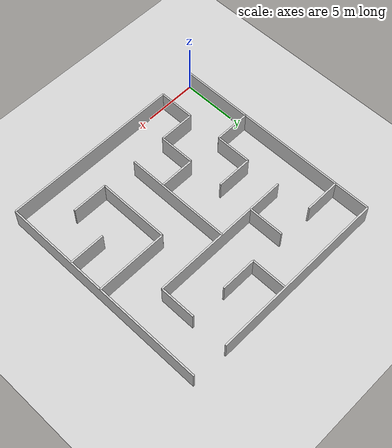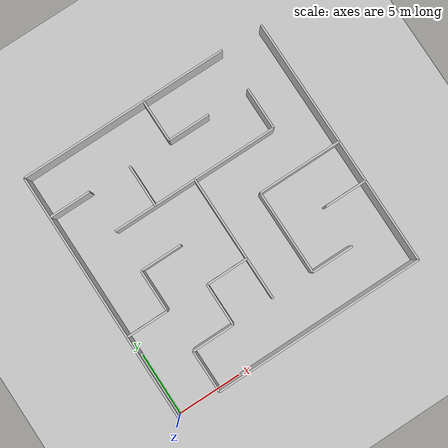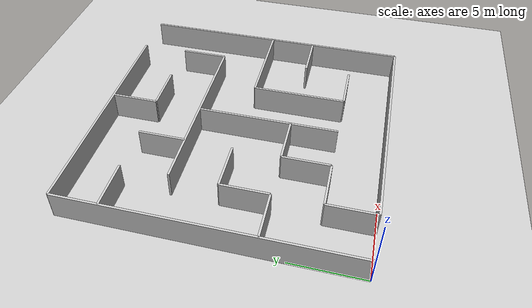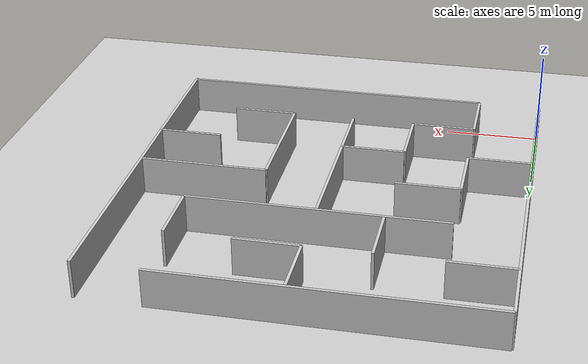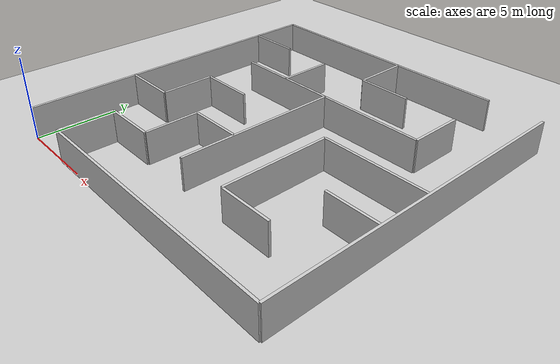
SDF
<?xml version="1.0" ?>
<sdf version="1.6">
  <world name="maze_maze_505">

    <include>
      <uri>model://sun</uri>
    </include>

    <include>
      <uri>model://ground_plane</uri>
    </include>

    <!-- Maze: 6x6 grid, 20m x 20m -->
    <!-- Cell size: 3.3m, passage width: 3.18m -->
    <!-- Entrance: south wall near x=1.7 (1.5m gap) -->
    <!-- Exit: north wall near x=18.3 (1.5m gap) -->
    <!-- 22 wall segments -->
    <model name="wall_0">
      <static>true</static>
      <pose>11.6667 0.0000 1.00 0 0 0</pose>
      <link name="link">
        <collision name="collision">
          <geometry>
            <box><size>16.6667 0.1500 2.00</size></box>
          </geometry>
        </collision>
        <visual name="visual">
          <geometry>
            <box><size>16.6667 0.1500 2.00</size></box>
          </geometry>
          <material>
            <ambient>0.7 0.7 0.7 1</ambient>
            <diffuse>0.8 0.8 0.8 1</diffuse>
          </material>
        </visual>
      </link>
    </model>
    <model name="wall_1">
      <static>true</static>
      <pose>5.0000 3.3333 1.00 0 0 0</pose>
      <link name="link">
        <collision name="collision">
          <geometry>
            <box><size>3.3333 0.1500 2.00</size></box>
          </geometry>
        </collision>
        <visual name="visual">
          <geometry>
            <box><size>3.3333 0.1500 2.00</size></box>
          </geometry>
          <material>
            <ambient>0.7 0.7 0.7 1</ambient>
            <diffuse>0.8 0.8 0.8 1</diffuse>
          </material>
        </visual>
      </link>
    </model>
    <model name="wall_2">
      <static>true</static>
      <pose>15.0000 3.3333 1.00 0 0 0</pose>
      <link name="link">
        <collision name="collision">
          <geometry>
            <box><size>3.3333 0.1500 2.00</size></box>
          </geometry>
        </collision>
        <visual name="visual">
          <geometry>
            <box><size>3.3333 0.1500 2.00</size></box>
          </geometry>
          <material>
            <ambient>0.7 0.7 0.7 1</ambient>
            <diffuse>0.8 0.8 0.8 1</diffuse>
          </material>
        </visual>
      </link>
    </model>
    <model name="wall_3">
      <static>true</static>
      <pose>1.6667 6.6667 1.00 0 0 0</pose>
      <link name="link">
        <collision name="collision">
          <geometry>
            <box><size>3.3333 0.1500 2.00</size></box>
          </geometry>
        </collision>
        <visual name="visual">
          <geometry>
            <box><size>3.3333 0.1500 2.00</size></box>
          </geometry>
          <material>
            <ambient>0.7 0.7 0.7 1</ambient>
            <diffuse>0.8 0.8 0.8 1</diffuse>
          </material>
        </visual>
      </link>
    </model>
    <model name="wall_4">
      <static>true</static>
      <pose>8.3333 6.6667 1.00 0 0 0</pose>
      <link name="link">
        <collision name="collision">
          <geometry>
            <box><size>3.3333 0.1500 2.00</size></box>
          </geometry>
        </collision>
        <visual name="visual">
          <geometry>
            <box><size>3.3333 0.1500 2.00</size></box>
          </geometry>
          <material>
            <ambient>0.7 0.7 0.7 1</ambient>
            <diffuse>0.8 0.8 0.8 1</diffuse>
          </material>
        </visual>
      </link>
    </model>
    <model name="wall_5">
      <static>true</static>
      <pose>18.3333 6.6667 1.00 0 0 0</pose>
      <link name="link">
        <collision name="collision">
          <geometry>
            <box><size>3.3333 0.1500 2.00</size></box>
          </geometry>
        </collision>
        <visual name="visual">
          <geometry>
            <box><size>3.3333 0.1500 2.00</size></box>
          </geometry>
          <material>
            <ambient>0.7 0.7 0.7 1</ambient>
            <diffuse>0.8 0.8 0.8 1</diffuse>
          </material>
        </visual>
      </link>
    </model>
    <model name="wall_6">
      <static>true</static>
      <pose>5.0000 10.0000 1.00 0 0 0</pose>
      <link name="link">
        <collision name="collision">
          <geometry>
            <box><size>3.3333 0.1500 2.00</size></box>
          </geometry>
        </collision>
        <visual name="visual">
          <geometry>
            <box><size>3.3333 0.1500 2.00</size></box>
          </geometry>
          <material>
            <ambient>0.7 0.7 0.7 1</ambient>
            <diffuse>0.8 0.8 0.8 1</diffuse>
          </material>
        </visual>
      </link>
    </model>
    <model name="wall_7">
      <static>true</static>
      <pose>16.6667 10.0000 1.00 0 0 0</pose>
      <link name="link">
        <collision name="collision">
          <geometry>
            <box><size>6.6667 0.1500 2.00</size></box>
          </geometry>
        </collision>
        <visual name="visual">
          <geometry>
            <box><size>6.6667 0.1500 2.00</size></box>
          </geometry>
          <material>
            <ambient>0.7 0.7 0.7 1</ambient>
            <diffuse>0.8 0.8 0.8 1</diffuse>
          </material>
        </visual>
      </link>
    </model>
    <model name="wall_8">
      <static>true</static>
      <pose>10.0000 13.3333 1.00 0 0 0</pose>
      <link name="link">
        <collision name="collision">
          <geometry>
            <box><size>13.3333 0.1500 2.00</size></box>
          </geometry>
        </collision>
        <visual name="visual">
          <geometry>
            <box><size>13.3333 0.1500 2.00</size></box>
          </geometry>
          <material>
            <ambient>0.7 0.7 0.7 1</ambient>
            <diffuse>0.8 0.8 0.8 1</diffuse>
          </material>
        </visual>
      </link>
    </model>
    <model name="wall_9">
      <static>true</static>
      <pose>1.6667 16.6667 1.00 0 0 0</pose>
      <link name="link">
        <collision name="collision">
          <geometry>
            <box><size>3.3333 0.1500 2.00</size></box>
          </geometry>
        </collision>
        <visual name="visual">
          <geometry>
            <box><size>3.3333 0.1500 2.00</size></box>
          </geometry>
          <material>
            <ambient>0.7 0.7 0.7 1</ambient>
            <diffuse>0.8 0.8 0.8 1</diffuse>
          </material>
        </visual>
      </link>
    </model>
    <model name="wall_10">
      <static>true</static>
      <pose>11.6667 16.6667 1.00 0 0 0</pose>
      <link name="link">
        <collision name="collision">
          <geometry>
            <box><size>3.3333 0.1500 2.00</size></box>
          </geometry>
        </collision>
        <visual name="visual">
          <geometry>
            <box><size>3.3333 0.1500 2.00</size></box>
          </geometry>
          <material>
            <ambient>0.7 0.7 0.7 1</ambient>
            <diffuse>0.8 0.8 0.8 1</diffuse>
          </material>
        </visual>
      </link>
    </model>
    <model name="wall_11">
      <static>true</static>
      <pose>8.3333 20.0000 1.00 0 0 0</pose>
      <link name="link">
        <collision name="collision">
          <geometry>
            <box><size>16.6667 0.1500 2.00</size></box>
          </geometry>
        </collision>
        <visual name="visual">
          <geometry>
            <box><size>16.6667 0.1500 2.00</size></box>
          </geometry>
          <material>
            <ambient>0.7 0.7 0.7 1</ambient>
            <diffuse>0.8 0.8 0.8 1</diffuse>
          </material>
        </visual>
      </link>
    </model>
    <model name="wall_12">
      <static>true</static>
      <pose>0.0000 10.0000 1.00 0 0 0</pose>
      <link name="link">
        <collision name="collision">
          <geometry>
            <box><size>0.1500 20.0000 2.00</size></box>
          </geometry>
        </collision>
        <visual name="visual">
          <geometry>
            <box><size>0.1500 20.0000 2.00</size></box>
          </geometry>
          <material>
            <ambient>0.7 0.7 0.7 1</ambient>
            <diffuse>0.8 0.8 0.8 1</diffuse>
          </material>
        </visual>
      </link>
    </model>
    <model name="wall_13">
      <static>true</static>
      <pose>3.3333 1.6667 1.00 0 0 0</pose>
      <link name="link">
        <collision name="collision">
          <geometry>
            <box><size>0.1500 3.3333 2.00</size></box>
          </geometry>
        </collision>
        <visual name="visual">
          <geometry>
            <box><size>0.1500 3.3333 2.00</size></box>
          </geometry>
          <material>
            <ambient>0.7 0.7 0.7 1</ambient>
            <diffuse>0.8 0.8 0.8 1</diffuse>
          </material>
        </visual>
      </link>
    </model>
    <model name="wall_14">
      <static>true</static>
      <pose>3.3333 8.3333 1.00 0 0 0</pose>
      <link name="link">
        <collision name="collision">
          <geometry>
            <box><size>0.1500 3.3333 2.00</size></box>
          </geometry>
        </collision>
        <visual name="visual">
          <geometry>
            <box><size>0.1500 3.3333 2.00</size></box>
          </geometry>
          <material>
            <ambient>0.7 0.7 0.7 1</ambient>
            <diffuse>0.8 0.8 0.8 1</diffuse>
          </material>
        </visual>
      </link>
    </model>
    <model name="wall_15">
      <static>true</static>
      <pose>6.6667 5.0000 1.00 0 0 0</pose>
      <link name="link">
        <collision name="collision">
          <geometry>
            <box><size>0.1500 3.3333 2.00</size></box>
          </geometry>
        </collision>
        <visual name="visual">
          <geometry>
            <box><size>0.1500 3.3333 2.00</size></box>
          </geometry>
          <material>
            <ambient>0.7 0.7 0.7 1</ambient>
            <diffuse>0.8 0.8 0.8 1</diffuse>
          </material>
        </visual>
      </link>
    </model>
    <model name="wall_16">
      <static>true</static>
      <pose>6.6667 15.0000 1.00 0 0 0</pose>
      <link name="link">
        <collision name="collision">
          <geometry>
            <box><size>0.1500 3.3333 2.00</size></box>
          </geometry>
        </collision>
        <visual name="visual">
          <geometry>
            <box><size>0.1500 3.3333 2.00</size></box>
          </geometry>
          <material>
            <ambient>0.7 0.7 0.7 1</ambient>
            <diffuse>0.8 0.8 0.8 1</diffuse>
          </material>
        </visual>
      </link>
    </model>
    <model name="wall_17">
      <static>true</static>
      <pose>10.0000 8.3333 1.00 0 0 0</pose>
      <link name="link">
        <collision name="collision">
          <geometry>
            <box><size>0.1500 10.0000 2.00</size></box>
          </geometry>
        </collision>
        <visual name="visual">
          <geometry>
            <box><size>0.1500 10.0000 2.00</size></box>
          </geometry>
          <material>
            <ambient>0.7 0.7 0.7 1</ambient>
            <diffuse>0.8 0.8 0.8 1</diffuse>
          </material>
        </visual>
      </link>
    </model>
    <model name="wall_18">
      <static>true</static>
      <pose>10.0000 18.3333 1.00 0 0 0</pose>
      <link name="link">
        <collision name="collision">
          <geometry>
            <box><size>0.1500 3.3333 2.00</size></box>
          </geometry>
        </collision>
        <visual name="visual">
          <geometry>
            <box><size>0.1500 3.3333 2.00</size></box>
          </geometry>
          <material>
            <ambient>0.7 0.7 0.7 1</ambient>
            <diffuse>0.8 0.8 0.8 1</diffuse>
          </material>
        </visual>
      </link>
    </model>
    <model name="wall_19">
      <static>true</static>
      <pose>13.3333 6.6667 1.00 0 0 0</pose>
      <link name="link">
        <collision name="collision">
          <geometry>
            <box><size>0.1500 6.6667 2.00</size></box>
          </geometry>
        </collision>
        <visual name="visual">
          <geometry>
            <box><size>0.1500 6.6667 2.00</size></box>
          </geometry>
          <material>
            <ambient>0.7 0.7 0.7 1</ambient>
            <diffuse>0.8 0.8 0.8 1</diffuse>
          </material>
        </visual>
      </link>
    </model>
    <model name="wall_20">
      <static>true</static>
      <pose>16.6667 15.0000 1.00 0 0 0</pose>
      <link name="link">
        <collision name="collision">
          <geometry>
            <box><size>0.1500 3.3333 2.00</size></box>
          </geometry>
        </collision>
        <visual name="visual">
          <geometry>
            <box><size>0.1500 3.3333 2.00</size></box>
          </geometry>
          <material>
            <ambient>0.7 0.7 0.7 1</ambient>
            <diffuse>0.8 0.8 0.8 1</diffuse>
          </material>
        </visual>
      </link>
    </model>
    <model name="wall_21">
      <static>true</static>
      <pose>20.0000 10.0000 1.00 0 0 0</pose>
      <link name="link">
        <collision name="collision">
          <geometry>
            <box><size>0.1500 20.0000 2.00</size></box>
          </geometry>
        </collision>
        <visual name="visual">
          <geometry>
            <box><size>0.1500 20.0000 2.00</size></box>
          </geometry>
          <material>
            <ambient>0.7 0.7 0.7 1</ambient>
            <diffuse>0.8 0.8 0.8 1</diffuse>
          </material>
        </visual>
      </link>
    </model>

  </world>
</sdf>
